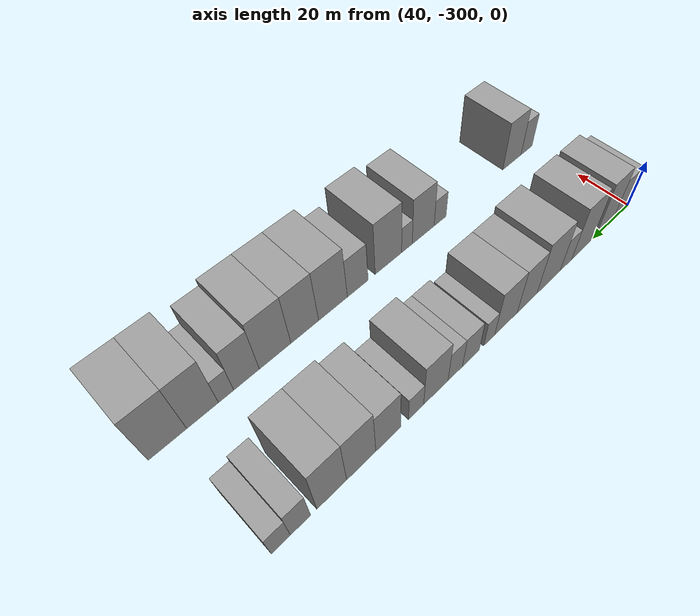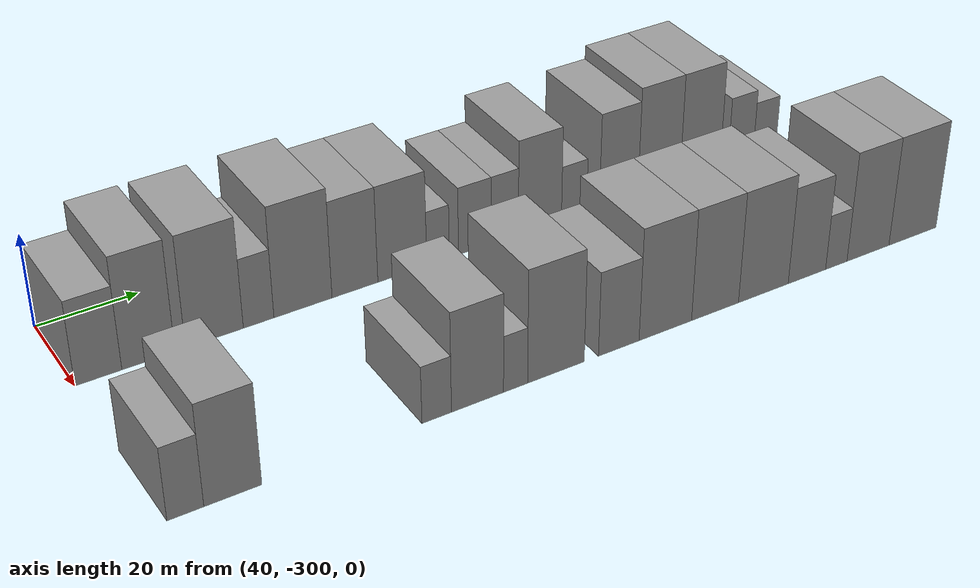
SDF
<sdf version="1.6">
 <world name="default">
  <model name="building_1">
   <static>1</static>
   <pose>50.0000 -295.6604 0 0.000000 0.000000 0.000000</pose>
   <link name="link">
    <pose>0 0 9.00 0 0 0</pose>
    <collision name="collision"><geometry><box><size>20.0000 8.6792 18.0000</size></box></geometry></collision>
    <visual name="visual">
     <cast_shadows>0</cast_shadows>
     <geometry><box><size>20.0000 8.6792 18.0000</size></box></geometry>
     <material>
      <script>
       <uri>model://grey_wall/materials/scripts</uri>
       <uri>model://grey_wall/materials/textures</uri>
       <name>vrc/grey_wall</name>
      </script>
     </material>
    </visual>
   </link>
  </model>
  <model name="building_2">
   <static>1</static>
   <pose>50.0000 -286.3089 0 0.000000 0.000000 0.000000</pose>
   <link name="link">
    <pose>0 0 12.00 0 0 0</pose>
    <collision name="collision"><geometry><box><size>20.0000 10.0237 24.0000</size></box></geometry></collision>
    <visual name="visual">
     <cast_shadows>0</cast_shadows>
     <geometry><box><size>20.0000 10.0237 24.0000</size></box></geometry>
     <material>
      <script>
       <uri>model://grey_wall/materials/scripts</uri>
       <uri>model://grey_wall/materials/textures</uri>
       <name>vrc/grey_wall</name>
      </script>
     </material>
    </visual>
   </link>
  </model>
  <model name="building_3">
   <static>1</static>
   <pose>50.0000 -273.6609 0 0.000000 0.000000 0.000000</pose>
   <link name="link">
    <pose>0 0 12.00 0 0 0</pose>
    <collision name="collision"><geometry><box><size>20.0000 11.2724 24.0000</size></box></geometry></collision>
    <visual name="visual">
     <cast_shadows>0</cast_shadows>
     <geometry><box><size>20.0000 11.2724 24.0000</size></box></geometry>
     <material>
      <script>
       <uri>model://grey_wall/materials/scripts</uri>
       <uri>model://grey_wall/materials/textures</uri>
       <name>vrc/grey_wall</name>
      </script>
     </material>
    </visual>
   </link>
  </model>
  <model name="building_4">
   <static>1</static>
   <pose>50.0000 -264.9814 0 0.000000 0.000000 0.000000</pose>
   <link name="link">
    <pose>0 0 7.50 0 0 0</pose>
    <collision name="collision"><geometry><box><size>20.0000 6.0866 15.0000</size></box></geometry></collision>
    <visual name="visual">
     <cast_shadows>0</cast_shadows>
     <geometry><box><size>20.0000 6.0866 15.0000</size></box></geometry>
     <material>
      <script>
       <uri>model://grey_wall/materials/scripts</uri>
       <uri>model://grey_wall/materials/textures</uri>
       <name>vrc/grey_wall</name>
      </script>
     </material>
    </visual>
   </link>
  </model>
  <model name="building_5">
   <static>1</static>
   <pose>50.0000 -256.0350 0 0.000000 0.000000 0.000000</pose>
   <link name="link">
    <pose>0 0 12.00 0 0 0</pose>
    <collision name="collision"><geometry><box><size>20.0000 11.8062 24.0000</size></box></geometry></collision>
    <visual name="visual">
     <cast_shadows>0</cast_shadows>
     <geometry><box><size>20.0000 11.8062 24.0000</size></box></geometry>
     <material>
      <script>
       <uri>model://grey_wall/materials/scripts</uri>
       <uri>model://grey_wall/materials/textures</uri>
       <name>vrc/grey_wall</name>
      </script>
     </material>
    </visual>
   </link>
  </model>
  <model name="building_6">
   <static>1</static>
   <pose>50.0000 -245.3482 0 0.000000 0.000000 0.000000</pose>
   <link name="link">
    <pose>0 0 10.50 0 0 0</pose>
    <collision name="collision"><geometry><box><size>20.0000 9.5675 21.0000</size></box></geometry></collision>
    <visual name="visual">
     <cast_shadows>0</cast_shadows>
     <geometry><box><size>20.0000 9.5675 21.0000</size></box></geometry>
     <material>
      <script>
       <uri>model://grey_wall/materials/scripts</uri>
       <uri>model://grey_wall/materials/textures</uri>
       <name>vrc/grey_wall</name>
      </script>
     </material>
    </visual>
   </link>
  </model>
  <model name="building_7">
   <static>1</static>
   <pose>50.0000 -235.3438 0 0.000000 0.000000 0.000000</pose>
   <link name="link">
    <pose>0 0 10.50 0 0 0</pose>
    <collision name="collision"><geometry><box><size>20.0000 10.4414 21.0000</size></box></geometry></collision>
    <visual name="visual">
     <cast_shadows>0</cast_shadows>
     <geometry><box><size>20.0000 10.4414 21.0000</size></box></geometry>
     <material>
      <script>
       <uri>model://grey_wall/materials/scripts</uri>
       <uri>model://grey_wall/materials/textures</uri>
       <name>vrc/grey_wall</name>
      </script>
     </material>
    </visual>
   </link>
  </model>
  <model name="building_8">
   <static>1</static>
   <pose>50.0000 -227.6628 0 0.000000 0.000000 0.000000</pose>
   <link name="link">
    <pose>0 0 6.00 0 0 0</pose>
    <collision name="collision"><geometry><box><size>20.0000 4.9206 12.0000</size></box></geometry></collision>
    <visual name="visual">
     <cast_shadows>0</cast_shadows>
     <geometry><box><size>20.0000 4.9206 12.0000</size></box></geometry>
     <material>
      <script>
       <uri>model://grey_wall/materials/scripts</uri>
       <uri>model://grey_wall/materials/textures</uri>
       <name>vrc/grey_wall</name>
      </script>
     </material>
    </visual>
   </link>
  </model>
  <model name="building_9">
   <static>1</static>
   <pose>50.0000 -219.5754 0 0.000000 0.000000 0.000000</pose>
   <link name="link">
    <pose>0 0 7.50 0 0 0</pose>
    <collision name="collision"><geometry><box><size>20.0000 7.2541 15.0000</size></box></geometry></collision>
    <visual name="visual">
     <cast_shadows>0</cast_shadows>
     <geometry><box><size>20.0000 7.2541 15.0000</size></box></geometry>
     <material>
      <script>
       <uri>model://grey_wall/materials/scripts</uri>
       <uri>model://grey_wall/materials/textures</uri>
       <name>vrc/grey_wall</name>
      </script>
     </material>
    </visual>
   </link>
  </model>
  <model name="building_10">
   <static>1</static>
   <pose>50.0000 -212.8982 0 0.000000 0.000000 0.000000</pose>
   <link name="link">
    <pose>0 0 7.50 0 0 0</pose>
    <collision name="collision"><geometry><box><size>20.0000 6.1003 15.0000</size></box></geometry></collision>
    <visual name="visual">
     <cast_shadows>0</cast_shadows>
     <geometry><box><size>20.0000 6.1003 15.0000</size></box></geometry>
     <material>
      <script>
       <uri>model://grey_wall/materials/scripts</uri>
       <uri>model://grey_wall/materials/textures</uri>
       <name>vrc/grey_wall</name>
      </script>
     </material>
    </visual>
   </link>
  </model>
  <model name="building_11">
   <static>1</static>
   <pose>50.0000 -204.9200 0 0.000000 0.000000 0.000000</pose>
   <link name="link">
    <pose>0 0 10.50 0 0 0</pose>
    <collision name="collision"><geometry><box><size>20.0000 9.8560 21.0000</size></box></geometry></collision>
    <visual name="visual">
     <cast_shadows>0</cast_shadows>
     <geometry><box><size>20.0000 9.8560 21.0000</size></box></geometry>
     <material>
      <script>
       <uri>model://grey_wall/materials/scripts</uri>
       <uri>model://grey_wall/materials/textures</uri>
       <name>vrc/grey_wall</name>
      </script>
     </material>
    </visual>
   </link>
  </model>
  <model name="building_12">
   <static>1</static>
   <pose>50.0000 -197.0589 0 0.000000 0.000000 0.000000</pose>
   <link name="link">
    <pose>0 0 6.00 0 0 0</pose>
    <collision name="collision"><geometry><box><size>20.0000 5.8663 12.0000</size></box></geometry></collision>
    <visual name="visual">
     <cast_shadows>0</cast_shadows>
     <geometry><box><size>20.0000 5.8663 12.0000</size></box></geometry>
     <material>
      <script>
       <uri>model://grey_wall/materials/scripts</uri>
       <uri>model://grey_wall/materials/textures</uri>
       <name>vrc/grey_wall</name>
      </script>
     </material>
    </visual>
   </link>
  </model>
  <model name="building_13">
   <static>1</static>
   <pose>50.0000 -186.5327 0 0.000000 0.000000 0.000000</pose>
   <link name="link">
    <pose>0 0 10.50 0 0 0</pose>
    <collision name="collision"><geometry><box><size>20.0000 9.1861 21.0000</size></box></geometry></collision>
    <visual name="visual">
     <cast_shadows>0</cast_shadows>
     <geometry><box><size>20.0000 9.1861 21.0000</size></box></geometry>
     <material>
      <script>
       <uri>model://grey_wall/materials/scripts</uri>
       <uri>model://grey_wall/materials/textures</uri>
       <name>vrc/grey_wall</name>
      </script>
     </material>
    </visual>
   </link>
  </model>
  <model name="building_14">
   <static>1</static>
   <pose>50.0000 -176.8102 0 0.000000 0.000000 0.000000</pose>
   <link name="link">
    <pose>0 0 12.00 0 0 0</pose>
    <collision name="collision"><geometry><box><size>20.0000 10.2588 24.0000</size></box></geometry></collision>
    <visual name="visual">
     <cast_shadows>0</cast_shadows>
     <geometry><box><size>20.0000 10.2588 24.0000</size></box></geometry>
     <material>
      <script>
       <uri>model://grey_wall/materials/scripts</uri>
       <uri>model://grey_wall/materials/textures</uri>
       <name>vrc/grey_wall</name>
      </script>
     </material>
    </visual>
   </link>
  </model>
  <model name="building_15">
   <static>1</static>
   <pose>50.0000 -166.6893 0 0.000000 0.000000 0.000000</pose>
   <link name="link">
    <pose>0 0 12.00 0 0 0</pose>
    <collision name="collision"><geometry><box><size>20.0000 9.9830 24.0000</size></box></geometry></collision>
    <visual name="visual">
     <cast_shadows>0</cast_shadows>
     <geometry><box><size>20.0000 9.9830 24.0000</size></box></geometry>
     <material>
      <script>
       <uri>model://grey_wall/materials/scripts</uri>
       <uri>model://grey_wall/materials/textures</uri>
       <name>vrc/grey_wall</name>
      </script>
     </material>
    </visual>
   </link>
  </model>
  <model name="building_16">
   <static>1</static>
   <pose>50.0000 -156.4822 0 0.000000 0.000000 0.000000</pose>
   <link name="link">
    <pose>0 0 7.50 0 0 0</pose>
    <collision name="collision"><geometry><box><size>20.0000 6.4312 15.0000</size></box></geometry></collision>
    <visual name="visual">
     <cast_shadows>0</cast_shadows>
     <geometry><box><size>20.0000 6.4312 15.0000</size></box></geometry>
     <material>
      <script>
       <uri>model://grey_wall/materials/scripts</uri>
       <uri>model://grey_wall/materials/textures</uri>
       <name>vrc/grey_wall</name>
      </script>
     </material>
    </visual>
   </link>
  </model>
  <model name="building_17">
   <static>1</static>
   <pose>50.0000 -150.3267 0 0.000000 0.000000 0.000000</pose>
   <link name="link">
    <pose>0 0 6.00 0 0 0</pose>
    <collision name="collision"><geometry><box><size>20.0000 5.8798 12.0000</size></box></geometry></collision>
    <visual name="visual">
     <cast_shadows>0</cast_shadows>
     <geometry><box><size>20.0000 5.8798 12.0000</size></box></geometry>
     <material>
      <script>
       <uri>model://grey_wall/materials/scripts</uri>
       <uri>model://grey_wall/materials/textures</uri>
       <name>vrc/grey_wall</name>
      </script>
     </material>
    </visual>
   </link>
  </model>
  <model name="building_69">
   <static>1</static>
   <pose>90.0000 -296.8135 0 0.000000 0.000000 0.000000</pose>
   <link name="link">
    <pose>0 0 7.50 0 0 0</pose>
    <collision name="collision"><geometry><box><size>20.0000 6.3731 15.0000</size></box></geometry></collision>
    <visual name="visual">
     <cast_shadows>0</cast_shadows>
     <geometry><box><size>20.0000 6.3731 15.0000</size></box></geometry>
     <material>
      <script>
       <uri>model://grey_wall/materials/scripts</uri>
       <uri>model://grey_wall/materials/textures</uri>
       <name>vrc/grey_wall</name>
      </script>
     </material>
    </visual>
   </link>
  </model>
  <model name="building_70">
   <static>1</static>
   <pose>90.0000 -288.5178 0 0.000000 0.000000 0.000000</pose>
   <link name="link">
    <pose>0 0 10.50 0 0 0</pose>
    <collision name="collision"><geometry><box><size>20.0000 10.2183 21.0000</size></box></geometry></collision>
    <visual name="visual">
     <cast_shadows>0</cast_shadows>
     <geometry><box><size>20.0000 10.2183 21.0000</size></box></geometry>
     <material>
      <script>
       <uri>model://grey_wall/materials/scripts</uri>
       <uri>model://grey_wall/materials/textures</uri>
       <name>vrc/grey_wall</name>
      </script>
     </material>
    </visual>
   </link>
  </model>
  <model name="building_71">
   <static>1</static>
   <pose>90.0000 -250.7756 0 0.000000 0.000000 0.000000</pose>
   <link name="link">
    <pose>0 0 6.00 0 0 0</pose>
    <collision name="collision"><geometry><box><size>20.0000 5.7553 12.0000</size></box></geometry></collision>
    <visual name="visual">
     <cast_shadows>0</cast_shadows>
     <geometry><box><size>20.0000 5.7553 12.0000</size></box></geometry>
     <material>
      <script>
       <uri>model://grey_wall/materials/scripts</uri>
       <uri>model://grey_wall/materials/textures</uri>
       <name>vrc/grey_wall</name>
      </script>
     </material>
    </visual>
   </link>
  </model>
  <model name="building_72">
   <static>1</static>
   <pose>90.0000 -242.7215 0 0.000000 0.000000 0.000000</pose>
   <link name="link">
    <pose>0 0 10.50 0 0 0</pose>
    <collision name="collision"><geometry><box><size>20.0000 10.3529 21.0000</size></box></geometry></collision>
    <visual name="visual">
     <cast_shadows>0</cast_shadows>
     <geometry><box><size>20.0000 10.3529 21.0000</size></box></geometry>
     <material>
      <script>
       <uri>model://grey_wall/materials/scripts</uri>
       <uri>model://grey_wall/materials/textures</uri>
       <name>vrc/grey_wall</name>
      </script>
     </material>
    </visual>
   </link>
  </model>
  <model name="building_73">
   <static>1</static>
   <pose>90.0000 -235.1049 0 0.000000 0.000000 0.000000</pose>
   <link name="link">
    <pose>0 0 6.00 0 0 0</pose>
    <collision name="collision"><geometry><box><size>20.0000 4.8804 12.0000</size></box></geometry></collision>
    <visual name="visual">
     <cast_shadows>0</cast_shadows>
     <geometry><box><size>20.0000 4.8804 12.0000</size></box></geometry>
     <material>
      <script>
       <uri>model://grey_wall/materials/scripts</uri>
       <uri>model://grey_wall/materials/textures</uri>
       <name>vrc/grey_wall</name>
      </script>
     </material>
    </visual>
   </link>
  </model>
  <model name="building_74">
   <static>1</static>
   <pose>90.0000 -226.8031 0 0.000000 0.000000 0.000000</pose>
   <link name="link">
    <pose>0 0 12.00 0 0 0</pose>
    <collision name="collision"><geometry><box><size>20.0000 11.7233 24.0000</size></box></geometry></collision>
    <visual name="visual">
     <cast_shadows>0</cast_shadows>
     <geometry><box><size>20.0000 11.7233 24.0000</size></box></geometry>
     <material>
      <script>
       <uri>model://grey_wall/materials/scripts</uri>
       <uri>model://grey_wall/materials/textures</uri>
       <name>vrc/grey_wall</name>
      </script>
     </material>
    </visual>
   </link>
  </model>
  <model name="building_75">
   <static>1</static>
   <pose>90.0000 -213.5939 0 0.000000 0.000000 0.000000</pose>
   <link name="link">
    <pose>0 0 9.00 0 0 0</pose>
    <collision name="collision"><geometry><box><size>20.0000 8.6951 18.0000</size></box></geometry></collision>
    <visual name="visual">
     <cast_shadows>0</cast_shadows>
     <geometry><box><size>20.0000 8.6951 18.0000</size></box></geometry>
     <material>
      <script>
       <uri>model://grey_wall/materials/scripts</uri>
       <uri>model://grey_wall/materials/textures</uri>
       <name>vrc/grey_wall</name>
      </script>
     </material>
    </visual>
   </link>
  </model>
  <model name="building_76">
   <static>1</static>
   <pose>90.0000 -203.4850 0 0.000000 0.000000 0.000000</pose>
   <link name="link">
    <pose>0 0 12.00 0 0 0</pose>
    <collision name="collision"><geometry><box><size>20.0000 11.5227 24.0000</size></box></geometry></collision>
    <visual name="visual">
     <cast_shadows>0</cast_shadows>
     <geometry><box><size>20.0000 11.5227 24.0000</size></box></geometry>
     <material>
      <script>
       <uri>model://grey_wall/materials/scripts</uri>
       <uri>model://grey_wall/materials/textures</uri>
       <name>vrc/grey_wall</name>
      </script>
     </material>
    </visual>
   </link>
  </model>
  <model name="building_77">
   <static>1</static>
   <pose>90.0000 -192.4300 0 0.000000 0.000000 0.000000</pose>
   <link name="link">
    <pose>0 0 12.00 0 0 0</pose>
    <collision name="collision"><geometry><box><size>20.0000 10.5872 24.0000</size></box></geometry></collision>
    <visual name="visual">
     <cast_shadows>0</cast_shadows>
     <geometry><box><size>20.0000 10.5872 24.0000</size></box></geometry>
     <material>
      <script>
       <uri>model://grey_wall/materials/scripts</uri>
       <uri>model://grey_wall/materials/textures</uri>
       <name>vrc/grey_wall</name>
      </script>
     </material>
    </visual>
   </link>
  </model>
  <model name="building_78">
   <static>1</static>
   <pose>90.0000 -181.3833 0 0.000000 0.000000 0.000000</pose>
   <link name="link">
    <pose>0 0 12.00 0 0 0</pose>
    <collision name="collision"><geometry><box><size>20.0000 11.5062 24.0000</size></box></geometry></collision>
    <visual name="visual">
     <cast_shadows>0</cast_shadows>
     <geometry><box><size>20.0000 11.5062 24.0000</size></box></geometry>
     <material>
      <script>
       <uri>model://grey_wall/materials/scripts</uri>
       <uri>model://grey_wall/materials/textures</uri>
       <name>vrc/grey_wall</name>
      </script>
     </material>
    </visual>
   </link>
  </model>
  <model name="building_79">
   <static>1</static>
   <pose>90.0000 -171.1926 0 0.000000 0.000000 0.000000</pose>
   <link name="link">
    <pose>0 0 10.50 0 0 0</pose>
    <collision name="collision"><geometry><box><size>20.0000 8.8752 21.0000</size></box></geometry></collision>
    <visual name="visual">
     <cast_shadows>0</cast_shadows>
     <geometry><box><size>20.0000 8.8752 21.0000</size></box></geometry>
     <material>
      <script>
       <uri>model://grey_wall/materials/scripts</uri>
       <uri>model://grey_wall/materials/textures</uri>
       <name>vrc/grey_wall</name>
      </script>
     </material>
    </visual>
   </link>
  </model>
  <model name="building_80">
   <static>1</static>
   <pose>90.0000 -164.1821 0 0.000000 0.000000 0.000000</pose>
   <link name="link">
    <pose>0 0 6.00 0 0 0</pose>
    <collision name="collision"><geometry><box><size>20.0000 5.1458 12.0000</size></box></geometry></collision>
    <visual name="visual">
     <cast_shadows>0</cast_shadows>
     <geometry><box><size>20.0000 5.1458 12.0000</size></box></geometry>
     <material>
      <script>
       <uri>model://grey_wall/materials/scripts</uri>
       <uri>model://grey_wall/materials/textures</uri>
       <name>vrc/grey_wall</name>
      </script>
     </material>
    </visual>
   </link>
  </model>
  <model name="building_81">
   <static>1</static>
   <pose>90.0000 -156.4600 0 0.000000 0.000000 0.000000</pose>
   <link name="link">
    <pose>0 0 12.00 0 0 0</pose>
    <collision name="collision"><geometry><box><size>20.0000 10.2984 24.0000</size></box></geometry></collision>
    <visual name="visual">
     <cast_shadows>0</cast_shadows>
     <geometry><box><size>20.0000 10.2984 24.0000</size></box></geometry>
     <material>
      <script>
       <uri>model://grey_wall/materials/scripts</uri>
       <uri>model://grey_wall/materials/textures</uri>
       <name>vrc/grey_wall</name>
      </script>
     </material>
    </visual>
   </link>
  </model>
  <model name="building_82">
   <static>1</static>
   <pose>90.0000 -145.3861 0 0.000000 0.000000 0.000000</pose>
   <link name="link">
    <pose>0 0 12.00 0 0 0</pose>
    <collision name="collision"><geometry><box><size>20.0000 11.8493 24.0000</size></box></geometry></collision>
    <visual name="visual">
     <cast_shadows>0</cast_shadows>
     <geometry><box><size>20.0000 11.8493 24.0000</size></box></geometry>
     <material>
      <script>
       <uri>model://grey_wall/materials/scripts</uri>
       <uri>model://grey_wall/materials/textures</uri>
       <name>vrc/grey_wall</name>
      </script>
     </material>
    </visual>
   </link>
  </model>
 </world>
</sdf>
